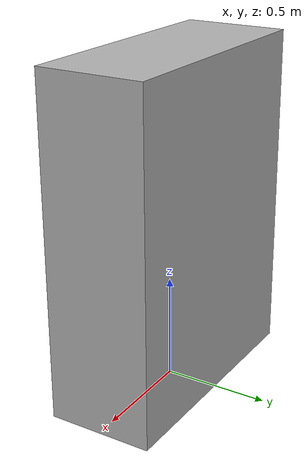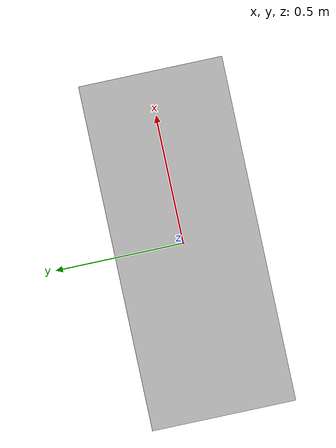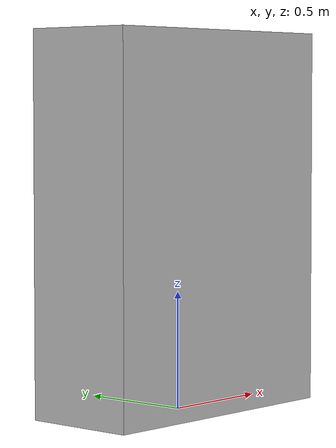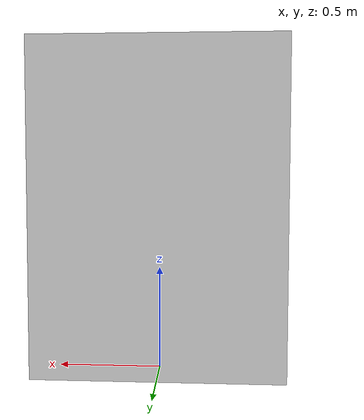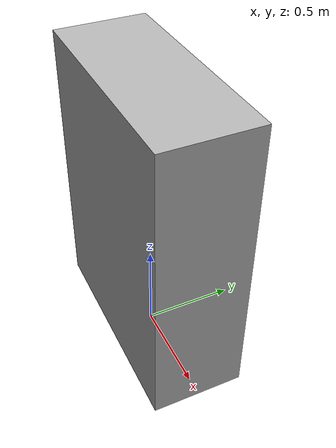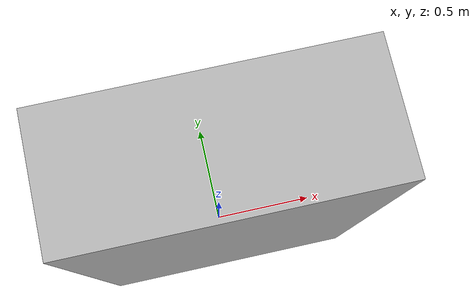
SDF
<?xml version="1.0"?>
<sdf version="1.7">
  <model name="shelf">
    <static>true</static>
    <link name="link">
      <pose>0 0 0.8 0 0 0</pose>
      <visual name="visual">
        <geometry>
          <box>
            <size>1.2 0.5 1.6</size>
          </box>
        </geometry>
        <material>
          <ambient>0.7 0.7 0.7 1</ambient>
          <diffuse>0.7 0.7 0.7 1</diffuse>
        </material>
      </visual>
      <collision name="collision">
        <geometry>
          <box>
            <size>1.2 0.5 1.6</size>
          </box>
        </geometry>
      </collision>
    </link>
  </model>
</sdf>
